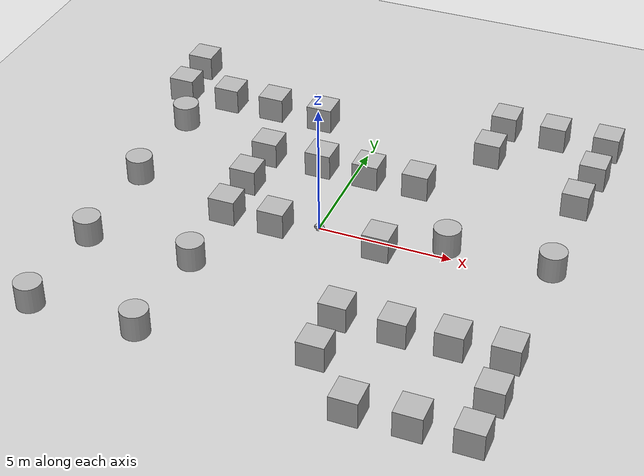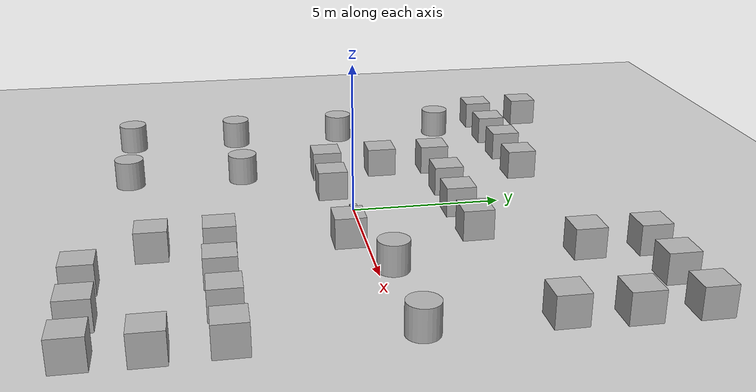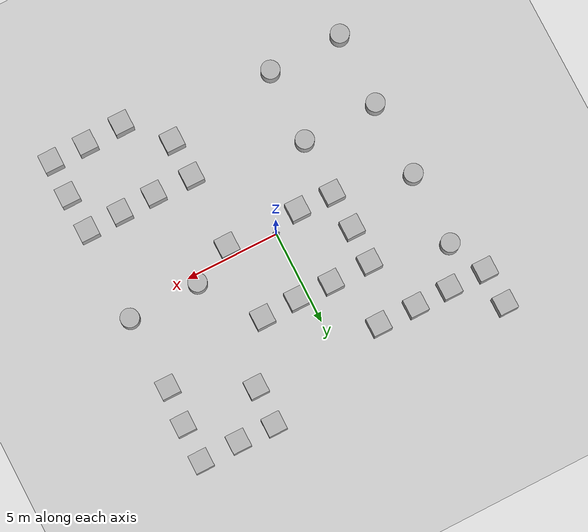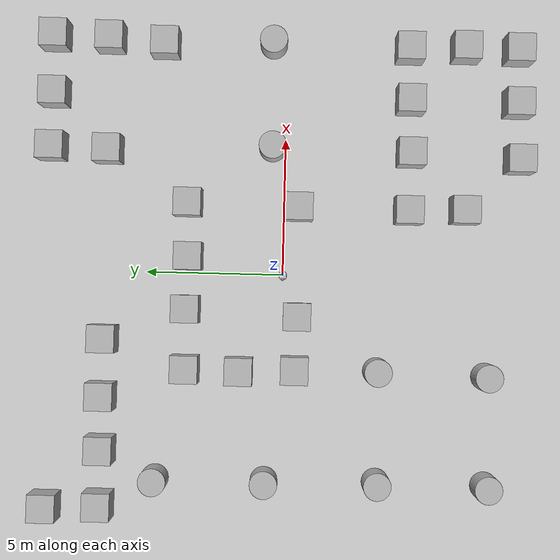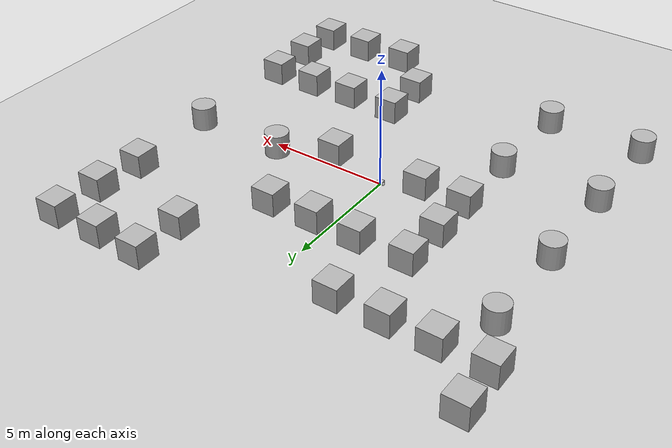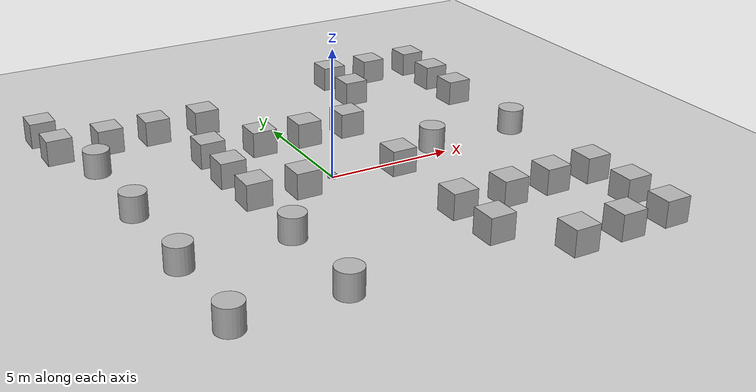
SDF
<sdf version='1.12'>
  <world name='empty'>
    <physics name='1ms' type='ignored'>
      <max_step_size>0.001</max_step_size>
      <real_time_factor>1</real_time_factor>
      <real_time_update_rate>1000</real_time_update_rate>
    </physics>
    <plugin name='gz::sim::systems::Physics' filename='gz-sim-physics-system'/>
    <plugin name='gz::sim::systems::UserCommands' filename='gz-sim-user-commands-system'/>
    <plugin name='gz::sim::systems::SceneBroadcaster' filename='gz-sim-scene-broadcaster-system'/>
    <plugin name='gz::sim::systems::Contact' filename='gz-sim-contact-system'/>
    <gravity>0 0 -9.8000000000000007</gravity>
    <magnetic_field>5.5644999999999998e-06 2.2875799999999999e-05 -4.2388400000000002e-05</magnetic_field>
    <atmosphere type='adiabatic'/>
    <scene>
      <ambient>0.400000006 0.400000006 0.400000006 1</ambient>
      <background>0.699999988 0.699999988 0.699999988 1</background>
      <shadows>true</shadows>
    </scene>
    <model name='ground_plane'>
      <static>true</static>
      <link name='link'>
        <collision name='collision'>
          <geometry>
            <plane>
              <normal>0 0 1</normal>
              <size>100 100</size>
            </plane>
          </geometry>
          <surface>
            <friction>
              <ode/>
            </friction>
            <bounce/>
            <contact/>
          </surface>
        </collision>
        <visual name='visual'>
          <geometry>
            <plane>
              <normal>0 0 1</normal>
              <size>100 100</size>
            </plane>
          </geometry>
          <material>
            <ambient>0.800000012 0.800000012 0.800000012 1</ambient>
            <diffuse>0.800000012 0.800000012 0.800000012 1</diffuse>
            <specular>0.800000012 0.800000012 0.800000012 1</specular>
          </material>
        </visual>
        <pose>0 0 0 0 0 0</pose>
        <inertial>
          <pose>0 0 0 0 0 0</pose>
          <mass>1</mass>
          <inertia>
            <ixx>1</ixx>
            <ixy>0</ixy>
            <ixz>0</ixz>
            <iyy>1</iyy>
            <iyz>0</iyz>
            <izz>1</izz>
          </inertia>
        </inertial>
        <enable_wind>false</enable_wind>
      </link>
      <pose>0 0 0 0 0 0</pose>
      <self_collide>false</self_collide>
    </model>
    <model name='box_0'>
      <pose>2.503623531650065 -0.53403224822917794 0.49999999990199806 6.2287739151293738e-22 9.3279666454713669e-22 -3.6315533669320137e-22</pose>
      <link name='box_link'>
        <inertial>
          <inertia>
            <ixx>0.16666</ixx>
            <ixy>0</ixy>
            <ixz>0</ixz>
            <iyy>0.16666</iyy>
            <iyz>0</iyz>
            <izz>0.16666</izz>
          </inertia>
          <mass>1</mass>
          <pose>0 0 0 0 0 0</pose>
        </inertial>
        <collision name='box_collision'>
          <geometry>
            <box>
              <size>1 1 1</size>
            </box>
          </geometry>
          <surface>
            <friction>
              <ode/>
            </friction>
            <bounce/>
            <contact/>
          </surface>
        </collision>
        <visual name='box_visual'>
          <geometry>
            <box>
              <size>1 1 1</size>
            </box>
          </geometry>
          <material>
            <ambient>0.300000012 0.300000012 0.300000012 1</ambient>
            <diffuse>0.699999988 0.699999988 0.699999988 1</diffuse>
            <specular>1 1 1 1</specular>
          </material>
        </visual>
        <pose>0 0 0 0 0 0</pose>
        <enable_wind>false</enable_wind>
      </link>
      <static>false</static>
      <self_collide>false</self_collide>
    </model>
    <model name='box_1'>
      <pose>-1.4900658982286914 -0.54602538299168302 0.49999999990199806 6.2287739151293738e-22 9.3279666454713669e-22 -3.6315533669320137e-22</pose>
      <link name='box_link'>
        <inertial>
          <inertia>
            <ixx>0.16666</ixx>
            <ixy>0</ixy>
            <ixz>0</ixz>
            <iyy>0.16666</iyy>
            <iyz>0</iyz>
            <izz>0.16666</izz>
          </inertia>
          <mass>1</mass>
          <pose>0 0 0 0 0 0</pose>
        </inertial>
        <collision name='box_collision'>
          <geometry>
            <box>
              <size>1 1 1</size>
            </box>
          </geometry>
          <surface>
            <friction>
              <ode/>
            </friction>
            <bounce/>
            <contact/>
          </surface>
        </collision>
        <visual name='box_visual'>
          <geometry>
            <box>
              <size>1 1 1</size>
            </box>
          </geometry>
          <material>
            <ambient>0.300000012 0.300000012 0.300000012 1</ambient>
            <diffuse>0.699999988 0.699999988 0.699999988 1</diffuse>
            <specular>1 1 1 1</specular>
          </material>
        </visual>
        <pose>0 0 0 0 0 0</pose>
        <enable_wind>false</enable_wind>
      </link>
      <static>false</static>
      <self_collide>false</self_collide>
    </model>
    <model name='box_1_1'>
      <pose>-3.4321913259403338 -0.49788729154501388 0.49999999990199806 6.2287739151293738e-22 9.3279666454713669e-22 -3.6315533669320137e-22</pose>
      <link name='box_link'>
        <inertial>
          <inertia>
            <ixx>0.16666</ixx>
            <ixy>0</ixy>
            <ixz>0</ixz>
            <iyy>0.16666</iyy>
            <iyz>0</iyz>
            <izz>0.16666</izz>
          </inertia>
          <mass>1</mass>
          <pose>0 0 0 0 0 0</pose>
        </inertial>
        <collision name='box_collision'>
          <geometry>
            <box>
              <size>1 1 1</size>
            </box>
          </geometry>
          <surface>
            <friction>
              <ode/>
            </friction>
            <bounce/>
            <contact/>
          </surface>
        </collision>
        <visual name='box_visual'>
          <geometry>
            <box>
              <size>1 1 1</size>
            </box>
          </geometry>
          <material>
            <ambient>0.300000012 0.300000012 0.300000012 1</ambient>
            <diffuse>0.699999988 0.699999988 0.699999988 1</diffuse>
            <specular>1 1 1 1</specular>
          </material>
        </visual>
        <pose>0 0 0 0 0 0</pose>
        <enable_wind>false</enable_wind>
      </link>
      <static>false</static>
      <self_collide>false</self_collide>
    </model>
    <model name='box_1_2'>
      <pose>-3.5110510468009632 1.515988647667496 0.49999999990199806 -8.9387997357110183e-22 2.0358842462432641e-22 -5.764668221621625e-23</pose>
      <link name='box_link'>
        <inertial>
          <inertia>
            <ixx>0.16666</ixx>
            <ixy>0</ixy>
            <ixz>0</ixz>
            <iyy>0.16666</iyy>
            <iyz>0</iyz>
            <izz>0.16666</izz>
          </inertia>
          <mass>1</mass>
          <pose>0 0 0 0 0 0</pose>
        </inertial>
        <collision name='box_collision'>
          <geometry>
            <box>
              <size>1 1 1</size>
            </box>
          </geometry>
          <surface>
            <friction>
              <ode/>
            </friction>
            <bounce/>
            <contact/>
          </surface>
        </collision>
        <visual name='box_visual'>
          <geometry>
            <box>
              <size>1 1 1</size>
            </box>
          </geometry>
          <material>
            <ambient>0.300000012 0.300000012 0.300000012 1</ambient>
            <diffuse>0.699999988 0.699999988 0.699999988 1</diffuse>
            <specular>1 1 1 1</specular>
          </material>
        </visual>
        <pose>0 0 0 0 0 0</pose>
        <enable_wind>false</enable_wind>
      </link>
      <static>false</static>
      <self_collide>false</self_collide>
    </model>
    <model name='box_1_3'>
      <pose>-3.4798979327555379 3.4697738362355128 0.49999999990199806 6.2287739151293738e-22 9.3279666454713669e-22 -3.6315533669320137e-22</pose>
      <link name='box_link'>
        <inertial>
          <inertia>
            <ixx>0.16666</ixx>
            <ixy>0</ixy>
            <ixz>0</ixz>
            <iyy>0.16666</iyy>
            <iyz>0</iyz>
            <izz>0.16666</izz>
          </inertia>
          <mass>1</mass>
          <pose>0 0 0 0 0 0</pose>
        </inertial>
        <collision name='box_collision'>
          <geometry>
            <box>
              <size>1 1 1</size>
            </box>
          </geometry>
          <surface>
            <friction>
              <ode/>
            </friction>
            <bounce/>
            <contact/>
          </surface>
        </collision>
        <visual name='box_visual'>
          <geometry>
            <box>
              <size>1 1 1</size>
            </box>
          </geometry>
          <material>
            <ambient>0.300000012 0.300000012 0.300000012 1</ambient>
            <diffuse>0.699999988 0.699999988 0.699999988 1</diffuse>
            <specular>1 1 1 1</specular>
          </material>
        </visual>
        <pose>0 0 0 0 0 0</pose>
        <enable_wind>false</enable_wind>
      </link>
      <static>false</static>
      <self_collide>false</self_collide>
    </model>
    <model name='box_1_4'>
      <pose>-1.3025653694116466 3.4933697077790953 0.49999999990199806 6.2287739151293738e-22 9.3279666454713669e-22 -3.6315533669320137e-22</pose>
      <link name='box_link'>
        <inertial>
          <inertia>
            <ixx>0.16666</ixx>
            <ixy>0</ixy>
            <ixz>0</ixz>
            <iyy>0.16666</iyy>
            <iyz>0</iyz>
            <izz>0.16666</izz>
          </inertia>
          <mass>1</mass>
          <pose>0 0 0 0 0 0</pose>
        </inertial>
        <collision name='box_collision'>
          <geometry>
            <box>
              <size>1 1 1</size>
            </box>
          </geometry>
          <surface>
            <friction>
              <ode/>
            </friction>
            <bounce/>
            <contact/>
          </surface>
        </collision>
        <visual name='box_visual'>
          <geometry>
            <box>
              <size>1 1 1</size>
            </box>
          </geometry>
          <material>
            <ambient>0.300000012 0.300000012 0.300000012 1</ambient>
            <diffuse>0.699999988 0.699999988 0.699999988 1</diffuse>
            <specular>1 1 1 1</specular>
          </material>
        </visual>
        <pose>0 0 0 0 0 0</pose>
        <enable_wind>false</enable_wind>
      </link>
      <static>false</static>
      <self_collide>false</self_collide>
    </model>
    <model name='box_1_5'>
      <pose>0.6158261353747011 3.4449937040749985 0.49999999990199806 -4.0737699217676438e-22 -3.0870083691057572e-21 2.019312431259651e-22</pose>
      <link name='box_link'>
        <inertial>
          <inertia>
            <ixx>0.16666</ixx>
            <ixy>0</ixy>
            <ixz>0</ixz>
            <iyy>0.16666</iyy>
            <iyz>0</iyz>
            <izz>0.16666</izz>
          </inertia>
          <mass>1</mass>
          <pose>0 0 0 0 0 0</pose>
        </inertial>
        <collision name='box_collision'>
          <geometry>
            <box>
              <size>1 1 1</size>
            </box>
          </geometry>
          <surface>
            <friction>
              <ode/>
            </friction>
            <bounce/>
            <contact/>
          </surface>
        </collision>
        <visual name='box_visual'>
          <geometry>
            <box>
              <size>1 1 1</size>
            </box>
          </geometry>
          <material>
            <ambient>0.300000012 0.300000012 0.300000012 1</ambient>
            <diffuse>0.699999988 0.699999988 0.699999988 1</diffuse>
            <specular>1 1 1 1</specular>
          </material>
        </visual>
        <pose>0 0 0 0 0 0</pose>
        <enable_wind>false</enable_wind>
      </link>
      <static>false</static>
      <self_collide>false</self_collide>
    </model>
    <model name='box_1_6'>
      <pose>2.5719891244864197 3.5066985074192232 0.49999999990199806 6.2287739151293738e-22 9.3279666454713669e-22 -3.6315533669320137e-22</pose>
      <link name='box_link'>
        <inertial>
          <inertia>
            <ixx>0.16666</ixx>
            <ixy>0</ixy>
            <ixz>0</ixz>
            <iyy>0.16666</iyy>
            <iyz>0</iyz>
            <izz>0.16666</izz>
          </inertia>
          <mass>1</mass>
          <pose>0 0 0 0 0 0</pose>
        </inertial>
        <collision name='box_collision'>
          <geometry>
            <box>
              <size>1 1 1</size>
            </box>
          </geometry>
          <surface>
            <friction>
              <ode/>
            </friction>
            <bounce/>
            <contact/>
          </surface>
        </collision>
        <visual name='box_visual'>
          <geometry>
            <box>
              <size>1 1 1</size>
            </box>
          </geometry>
          <material>
            <ambient>0.300000012 0.300000012 0.300000012 1</ambient>
            <diffuse>0.699999988 0.699999988 0.699999988 1</diffuse>
            <specular>1 1 1 1</specular>
          </material>
        </visual>
        <pose>0 0 0 0 0 0</pose>
        <enable_wind>false</enable_wind>
      </link>
      <static>false</static>
      <self_collide>false</self_collide>
    </model>
    <model name='box_1_7'>
      <pose>8.4421075652482678 -8.4142646879856287 0.49999999990199806 6.2287739151293738e-22 9.3279666454713669e-22 -3.6315533669320137e-22</pose>
      <link name='box_link'>
        <inertial>
          <inertia>
            <ixx>0.16666</ixx>
            <ixy>0</ixy>
            <ixz>0</ixz>
            <iyy>0.16666</iyy>
            <iyz>0</iyz>
            <izz>0.16666</izz>
          </inertia>
          <mass>1</mass>
          <pose>0 0 0 0 0 0</pose>
        </inertial>
        <collision name='box_collision'>
          <geometry>
            <box>
              <size>1 1 1</size>
            </box>
          </geometry>
          <surface>
            <friction>
              <ode/>
            </friction>
            <bounce/>
            <contact/>
          </surface>
        </collision>
        <visual name='box_visual'>
          <geometry>
            <box>
              <size>1 1 1</size>
            </box>
          </geometry>
          <material>
            <ambient>0.300000012 0.300000012 0.300000012 1</ambient>
            <diffuse>0.699999988 0.699999988 0.699999988 1</diffuse>
            <specular>1 1 1 1</specular>
          </material>
        </visual>
        <pose>0 0 0 0 0 0</pose>
        <enable_wind>false</enable_wind>
      </link>
      <static>false</static>
      <self_collide>false</self_collide>
    </model>
    <model name='box_1_8'>
      <pose>6.4898701546308546 -8.4375731814321924 0.49999999990199806 6.2287739151293738e-22 9.3279666454713669e-22 -3.6315533669320137e-22</pose>
      <link name='box_link'>
        <inertial>
          <inertia>
            <ixx>0.16666</ixx>
            <ixy>0</ixy>
            <ixz>0</ixz>
            <iyy>0.16666</iyy>
            <iyz>0</iyz>
            <izz>0.16666</izz>
          </inertia>
          <mass>1</mass>
          <pose>0 0 0 0 0 0</pose>
        </inertial>
        <collision name='box_collision'>
          <geometry>
            <box>
              <size>1 1 1</size>
            </box>
          </geometry>
          <surface>
            <friction>
              <ode/>
            </friction>
            <bounce/>
            <contact/>
          </surface>
        </collision>
        <visual name='box_visual'>
          <geometry>
            <box>
              <size>1 1 1</size>
            </box>
          </geometry>
          <material>
            <ambient>0.300000012 0.300000012 0.300000012 1</ambient>
            <diffuse>0.699999988 0.699999988 0.699999988 1</diffuse>
            <specular>1 1 1 1</specular>
          </material>
        </visual>
        <pose>0 0 0 0 0 0</pose>
        <enable_wind>false</enable_wind>
      </link>
      <static>false</static>
      <self_collide>false</self_collide>
    </model>
    <model name='box_1_9'>
      <pose>8.4775245881942762 -6.4913790985202677 0.49999999990199806 6.2287739151293738e-22 9.3279666454713669e-22 -3.6315533669320137e-22</pose>
      <link name='box_link'>
        <inertial>
          <inertia>
            <ixx>0.16666</ixx>
            <ixy>0</ixy>
            <ixz>0</ixz>
            <iyy>0.16666</iyy>
            <iyz>0</iyz>
            <izz>0.16666</izz>
          </inertia>
          <mass>1</mass>
          <pose>0 0 0 0 0 0</pose>
        </inertial>
        <collision name='box_collision'>
          <geometry>
            <box>
              <size>1 1 1</size>
            </box>
          </geometry>
          <surface>
            <friction>
              <ode/>
            </friction>
            <bounce/>
            <contact/>
          </surface>
        </collision>
        <visual name='box_visual'>
          <geometry>
            <box>
              <size>1 1 1</size>
            </box>
          </geometry>
          <material>
            <ambient>0.300000012 0.300000012 0.300000012 1</ambient>
            <diffuse>0.699999988 0.699999988 0.699999988 1</diffuse>
            <specular>1 1 1 1</specular>
          </material>
        </visual>
        <pose>0 0 0 0 0 0</pose>
        <enable_wind>false</enable_wind>
      </link>
      <static>false</static>
      <self_collide>false</self_collide>
    </model>
    <model name='box_1_10'>
      <pose>8.4062631200933708 -4.4471766204643357 0.49999999990199806 6.2287739151293738e-22 9.3279666454713669e-22 -3.6315533669320137e-22</pose>
      <link name='box_link'>
        <inertial>
          <inertia>
            <ixx>0.16666</ixx>
            <ixy>0</ixy>
            <ixz>0</ixz>
            <iyy>0.16666</iyy>
            <iyz>0</iyz>
            <izz>0.16666</izz>
          </inertia>
          <mass>1</mass>
          <pose>0 0 0 0 0 0</pose>
        </inertial>
        <collision name='box_collision'>
          <geometry>
            <box>
              <size>1 1 1</size>
            </box>
          </geometry>
          <surface>
            <friction>
              <ode/>
            </friction>
            <bounce/>
            <contact/>
          </surface>
        </collision>
        <visual name='box_visual'>
          <geometry>
            <box>
              <size>1 1 1</size>
            </box>
          </geometry>
          <material>
            <ambient>0.300000012 0.300000012 0.300000012 1</ambient>
            <diffuse>0.699999988 0.699999988 0.699999988 1</diffuse>
            <specular>1 1 1 1</specular>
          </material>
        </visual>
        <pose>0 0 0 0 0 0</pose>
        <enable_wind>false</enable_wind>
      </link>
      <static>false</static>
      <self_collide>false</self_collide>
    </model>
    <model name='box_1_11'>
      <pose>6.5123957052026915 -4.507337402706165 0.49999999990199806 6.2287739151293738e-22 9.3279666454713669e-22 -3.6315533669320137e-22</pose>
      <link name='box_link'>
        <inertial>
          <inertia>
            <ixx>0.16666</ixx>
            <ixy>0</ixy>
            <ixz>0</ixz>
            <iyy>0.16666</iyy>
            <iyz>0</iyz>
            <izz>0.16666</izz>
          </inertia>
          <mass>1</mass>
          <pose>0 0 0 0 0 0</pose>
        </inertial>
        <collision name='box_collision'>
          <geometry>
            <box>
              <size>1 1 1</size>
            </box>
          </geometry>
          <surface>
            <friction>
              <ode/>
            </friction>
            <bounce/>
            <contact/>
          </surface>
        </collision>
        <visual name='box_visual'>
          <geometry>
            <box>
              <size>1 1 1</size>
            </box>
          </geometry>
          <material>
            <ambient>0.300000012 0.300000012 0.300000012 1</ambient>
            <diffuse>0.699999988 0.699999988 0.699999988 1</diffuse>
            <specular>1 1 1 1</specular>
          </material>
        </visual>
        <pose>0 0 0 0 0 0</pose>
        <enable_wind>false</enable_wind>
      </link>
      <static>false</static>
      <self_collide>false</self_collide>
    </model>
    <model name='box_1_12'>
      <pose>4.5832504717364806 -4.5685122910527829 0.49999999990199806 6.2287739151293738e-22 9.3279666454713669e-22 -3.6315533669320137e-22</pose>
      <link name='box_link'>
        <inertial>
          <inertia>
            <ixx>0.16666</ixx>
            <ixy>0</ixy>
            <ixz>0</ixz>
            <iyy>0.16666</iyy>
            <iyz>0</iyz>
            <izz>0.16666</izz>
          </inertia>
          <mass>1</mass>
          <pose>0 0 0 0 0 0</pose>
        </inertial>
        <collision name='box_collision'>
          <geometry>
            <box>
              <size>1 1 1</size>
            </box>
          </geometry>
          <surface>
            <friction>
              <ode/>
            </friction>
            <bounce/>
            <contact/>
          </surface>
        </collision>
        <visual name='box_visual'>
          <geometry>
            <box>
              <size>1 1 1</size>
            </box>
          </geometry>
          <material>
            <ambient>0.300000012 0.300000012 0.300000012 1</ambient>
            <diffuse>0.699999988 0.699999988 0.699999988 1</diffuse>
            <specular>1 1 1 1</specular>
          </material>
        </visual>
        <pose>0 0 0 0 0 0</pose>
        <enable_wind>false</enable_wind>
      </link>
      <static>false</static>
      <self_collide>false</self_collide>
    </model>
    <model name='box_1_13'>
      <pose>2.4728567501726895 -4.5199002084521949 0.49999999990199806 6.2287739151293738e-22 9.3279666454713669e-22 -3.6315533669320137e-22</pose>
      <link name='box_link'>
        <inertial>
          <inertia>
            <ixx>0.16666</ixx>
            <ixy>0</ixy>
            <ixz>0</ixz>
            <iyy>0.16666</iyy>
            <iyz>0</iyz>
            <izz>0.16666</izz>
          </inertia>
          <mass>1</mass>
          <pose>0 0 0 0 0 0</pose>
        </inertial>
        <collision name='box_collision'>
          <geometry>
            <box>
              <size>1 1 1</size>
            </box>
          </geometry>
          <surface>
            <friction>
              <ode/>
            </friction>
            <bounce/>
            <contact/>
          </surface>
        </collision>
        <visual name='box_visual'>
          <geometry>
            <box>
              <size>1 1 1</size>
            </box>
          </geometry>
          <material>
            <ambient>0.300000012 0.300000012 0.300000012 1</ambient>
            <diffuse>0.699999988 0.699999988 0.699999988 1</diffuse>
            <specular>1 1 1 1</specular>
          </material>
        </visual>
        <pose>0 0 0 0 0 0</pose>
        <enable_wind>false</enable_wind>
      </link>
      <static>false</static>
      <self_collide>false</self_collide>
    </model>
    <model name='box_1_14'>
      <pose>2.5295811864806743 -6.563308527208509 0.49999999990199806 6.2287739151293738e-22 9.3279666454713669e-22 -3.6315533669320137e-22</pose>
      <link name='box_link'>
        <inertial>
          <inertia>
            <ixx>0.16666</ixx>
            <ixy>0</ixy>
            <ixz>0</ixz>
            <iyy>0.16666</iyy>
            <iyz>0</iyz>
            <izz>0.16666</izz>
          </inertia>
          <mass>1</mass>
          <pose>0 0 0 0 0 0</pose>
        </inertial>
        <collision name='box_collision'>
          <geometry>
            <box>
              <size>1 1 1</size>
            </box>
          </geometry>
          <surface>
            <friction>
              <ode/>
            </friction>
            <bounce/>
            <contact/>
          </surface>
        </collision>
        <visual name='box_visual'>
          <geometry>
            <box>
              <size>1 1 1</size>
            </box>
          </geometry>
          <material>
            <ambient>0.300000012 0.300000012 0.300000012 1</ambient>
            <diffuse>0.699999988 0.699999988 0.699999988 1</diffuse>
            <specular>1 1 1 1</specular>
          </material>
        </visual>
        <pose>0 0 0 0 0 0</pose>
        <enable_wind>false</enable_wind>
      </link>
      <static>false</static>
      <self_collide>false</self_collide>
    </model>
    <model name='box_1_15'>
      <pose>4.4289535820059811 -8.5315301827347465 0.49999999990199806 6.2287739151293738e-22 9.3279666454713669e-22 -3.6315533669320137e-22</pose>
      <link name='box_link'>
        <inertial>
          <inertia>
            <ixx>0.16666</ixx>
            <ixy>0</ixy>
            <ixz>0</ixz>
            <iyy>0.16666</iyy>
            <iyz>0</iyz>
            <izz>0.16666</izz>
          </inertia>
          <mass>1</mass>
          <pose>0 0 0 0 0 0</pose>
        </inertial>
        <collision name='box_collision'>
          <geometry>
            <box>
              <size>1 1 1</size>
            </box>
          </geometry>
          <surface>
            <friction>
              <ode/>
            </friction>
            <bounce/>
            <contact/>
          </surface>
        </collision>
        <visual name='box_visual'>
          <geometry>
            <box>
              <size>1 1 1</size>
            </box>
          </geometry>
          <material>
            <ambient>0.300000012 0.300000012 0.300000012 1</ambient>
            <diffuse>0.699999988 0.699999988 0.699999988 1</diffuse>
            <specular>1 1 1 1</specular>
          </material>
        </visual>
        <pose>0 0 0 0 0 0</pose>
        <enable_wind>false</enable_wind>
      </link>
      <static>false</static>
      <self_collide>false</self_collide>
    </model>
    <model name='box_1_16'>
      <pose>-6.4543298537715392 6.4618063745167431 0.49999999990199806 6.2287739151293738e-22 9.3279666454713669e-22 -3.6315533669320137e-22</pose>
      <link name='box_link'>
        <inertial>
          <inertia>
            <ixx>0.16666</ixx>
            <ixy>0</ixy>
            <ixz>0</ixz>
            <iyy>0.16666</iyy>
            <iyz>0</iyz>
            <izz>0.16666</izz>
          </inertia>
          <mass>1</mass>
          <pose>0 0 0 0 0 0</pose>
        </inertial>
        <collision name='box_collision'>
          <geometry>
            <box>
              <size>1 1 1</size>
            </box>
          </geometry>
          <surface>
            <friction>
              <ode/>
            </friction>
            <bounce/>
            <contact/>
          </surface>
        </collision>
        <visual name='box_visual'>
          <geometry>
            <box>
              <size>1 1 1</size>
            </box>
          </geometry>
          <material>
            <ambient>0.300000012 0.300000012 0.300000012 1</ambient>
            <diffuse>0.699999988 0.699999988 0.699999988 1</diffuse>
            <specular>1 1 1 1</specular>
          </material>
        </visual>
        <pose>0 0 0 0 0 0</pose>
        <enable_wind>false</enable_wind>
      </link>
      <static>false</static>
      <self_collide>false</self_collide>
    </model>
    <model name='box_1_17'>
      <pose>-8.4564350831453936 6.4741723821877857 0.49999999990199806 6.2287739151293738e-22 9.3279666454713669e-22 -3.6315533669320137e-22</pose>
      <link name='box_link'>
        <inertial>
          <inertia>
            <ixx>0.16666</ixx>
            <ixy>0</ixy>
            <ixz>0</ixz>
            <iyy>0.16666</iyy>
            <iyz>0</iyz>
            <izz>0.16666</izz>
          </inertia>
          <mass>1</mass>
          <pose>0 0 0 0 0 0</pose>
        </inertial>
        <collision name='box_collision'>
          <geometry>
            <box>
              <size>1 1 1</size>
            </box>
          </geometry>
          <surface>
            <friction>
              <ode/>
            </friction>
            <bounce/>
            <contact/>
          </surface>
        </collision>
        <visual name='box_visual'>
          <geometry>
            <box>
              <size>1 1 1</size>
            </box>
          </geometry>
          <material>
            <ambient>0.300000012 0.300000012 0.300000012 1</ambient>
            <diffuse>0.699999988 0.699999988 0.699999988 1</diffuse>
            <specular>1 1 1 1</specular>
          </material>
        </visual>
        <pose>0 0 0 0 0 0</pose>
        <enable_wind>false</enable_wind>
      </link>
      <static>false</static>
      <self_collide>false</self_collide>
    </model>
    <model name='box_1_18'>
      <pose>-8.5521222252819964 8.4236275462564336 0.49999999990199806 6.2287739151293738e-22 9.3279666454713669e-22 -3.6315533669320137e-22</pose>
      <link name='box_link'>
        <inertial>
          <inertia>
            <ixx>0.16666</ixx>
            <ixy>0</ixy>
            <ixz>0</ixz>
            <iyy>0.16666</iyy>
            <iyz>0</iyz>
            <izz>0.16666</izz>
          </inertia>
          <mass>1</mass>
          <pose>0 0 0 0 0 0</pose>
        </inertial>
        <collision name='box_collision'>
          <geometry>
            <box>
              <size>1 1 1</size>
            </box>
          </geometry>
          <surface>
            <friction>
              <ode/>
            </friction>
            <bounce/>
            <contact/>
          </surface>
        </collision>
        <visual name='box_visual'>
          <geometry>
            <box>
              <size>1 1 1</size>
            </box>
          </geometry>
          <material>
            <ambient>0.300000012 0.300000012 0.300000012 1</ambient>
            <diffuse>0.699999988 0.699999988 0.699999988 1</diffuse>
            <specular>1 1 1 1</specular>
          </material>
        </visual>
        <pose>0 0 0 0 0 0</pose>
        <enable_wind>false</enable_wind>
      </link>
      <static>false</static>
      <self_collide>false</self_collide>
    </model>
    <model name='box_1_19'>
      <pose>-4.5259752952845904 6.4878449526403159 0.49999999990199806 6.2287739151293738e-22 9.3279666454713669e-22 -3.6315533669320137e-22</pose>
      <link name='box_link'>
        <inertial>
          <inertia>
            <ixx>0.16666</ixx>
            <ixy>0</ixy>
            <ixz>0</ixz>
            <iyy>0.16666</iyy>
            <iyz>0</iyz>
            <izz>0.16666</izz>
          </inertia>
          <mass>1</mass>
          <pose>0 0 0 0 0 0</pose>
        </inertial>
        <collision name='box_collision'>
          <geometry>
            <box>
              <size>1 1 1</size>
            </box>
          </geometry>
          <surface>
            <friction>
              <ode/>
            </friction>
            <bounce/>
            <contact/>
          </surface>
        </collision>
        <visual name='box_visual'>
          <geometry>
            <box>
              <size>1 1 1</size>
            </box>
          </geometry>
          <material>
            <ambient>0.300000012 0.300000012 0.300000012 1</ambient>
            <diffuse>0.699999988 0.699999988 0.699999988 1</diffuse>
            <specular>1 1 1 1</specular>
          </material>
        </visual>
        <pose>0 0 0 0 0 0</pose>
        <enable_wind>false</enable_wind>
      </link>
      <static>false</static>
      <self_collide>false</self_collide>
    </model>
    <model name='box_1_20'>
      <pose>-2.4489593069959898 6.4749623607507081 0.49999999990199806 6.2287739151293738e-22 9.3279666454713669e-22 -3.6315533669320137e-22</pose>
      <link name='box_link'>
        <inertial>
          <inertia>
            <ixx>0.16666</ixx>
            <ixy>0</ixy>
            <ixz>0</ixz>
            <iyy>0.16666</iyy>
            <iyz>0</iyz>
            <izz>0.16666</izz>
          </inertia>
          <mass>1</mass>
          <pose>0 0 0 0 0 0</pose>
        </inertial>
        <collision name='box_collision'>
          <geometry>
            <box>
              <size>1 1 1</size>
            </box>
          </geometry>
          <surface>
            <friction>
              <ode/>
            </friction>
            <bounce/>
            <contact/>
          </surface>
        </collision>
        <visual name='box_visual'>
          <geometry>
            <box>
              <size>1 1 1</size>
            </box>
          </geometry>
          <material>
            <ambient>0.300000012 0.300000012 0.300000012 1</ambient>
            <diffuse>0.699999988 0.699999988 0.699999988 1</diffuse>
            <specular>1 1 1 1</specular>
          </material>
        </visual>
        <pose>0 0 0 0 0 0</pose>
        <enable_wind>false</enable_wind>
      </link>
      <static>false</static>
      <self_collide>false</self_collide>
    </model>
    <model name='box_1_21'>
      <pose>8.5667366041728457 8.5085690830310963 0.49999999990199806 6.2287739151293738e-22 9.3279666454713669e-22 -3.6315533669320137e-22</pose>
      <link name='box_link'>
        <inertial>
          <inertia>
            <ixx>0.16666</ixx>
            <ixy>0</ixy>
            <ixz>0</ixz>
            <iyy>0.16666</iyy>
            <iyz>0</iyz>
            <izz>0.16666</izz>
          </inertia>
          <mass>1</mass>
          <pose>0 0 0 0 0 0</pose>
        </inertial>
        <collision name='box_collision'>
          <geometry>
            <box>
              <size>1 1 1</size>
            </box>
          </geometry>
          <surface>
            <friction>
              <ode/>
            </friction>
            <bounce/>
            <contact/>
          </surface>
        </collision>
        <visual name='box_visual'>
          <geometry>
            <box>
              <size>1 1 1</size>
            </box>
          </geometry>
          <material>
            <ambient>0.300000012 0.300000012 0.300000012 1</ambient>
            <diffuse>0.699999988 0.699999988 0.699999988 1</diffuse>
            <specular>1 1 1 1</specular>
          </material>
        </visual>
        <pose>0 0 0 0 0 0</pose>
        <enable_wind>false</enable_wind>
      </link>
      <static>false</static>
      <self_collide>false</self_collide>
    </model>
    <model name='box_1_22'>
      <pose>6.4810127031188953 8.4826358949154361 0.49999999990199806 6.2287739151293738e-22 9.3279666454713669e-22 -3.6315533669320137e-22</pose>
      <link name='box_link'>
        <inertial>
          <inertia>
            <ixx>0.16666</ixx>
            <ixy>0</ixy>
            <ixz>0</ixz>
            <iyy>0.16666</iyy>
            <iyz>0</iyz>
            <izz>0.16666</izz>
          </inertia>
          <mass>1</mass>
          <pose>0 0 0 0 0 0</pose>
        </inertial>
        <collision name='box_collision'>
          <geometry>
            <box>
              <size>1 1 1</size>
            </box>
          </geometry>
          <surface>
            <friction>
              <ode/>
            </friction>
            <bounce/>
            <contact/>
          </surface>
        </collision>
        <visual name='box_visual'>
          <geometry>
            <box>
              <size>1 1 1</size>
            </box>
          </geometry>
          <material>
            <ambient>0.300000012 0.300000012 0.300000012 1</ambient>
            <diffuse>0.699999988 0.699999988 0.699999988 1</diffuse>
            <specular>1 1 1 1</specular>
          </material>
        </visual>
        <pose>0 0 0 0 0 0</pose>
        <enable_wind>false</enable_wind>
      </link>
      <static>false</static>
      <self_collide>false</self_collide>
    </model>
    <model name='box_1_23'>
      <pose>4.5097548821210989 8.5330469070127783 0.49999999990199806 6.2287739151293738e-22 9.3279666454713669e-22 -3.6315533669320137e-22</pose>
      <link name='box_link'>
        <inertial>
          <inertia>
            <ixx>0.16666</ixx>
            <ixy>0</ixy>
            <ixz>0</ixz>
            <iyy>0.16666</iyy>
            <iyz>0</iyz>
            <izz>0.16666</izz>
          </inertia>
          <mass>1</mass>
          <pose>0 0 0 0 0 0</pose>
        </inertial>
        <collision name='box_collision'>
          <geometry>
            <box>
              <size>1 1 1</size>
            </box>
          </geometry>
          <surface>
            <friction>
              <ode/>
            </friction>
            <bounce/>
            <contact/>
          </surface>
        </collision>
        <visual name='box_visual'>
          <geometry>
            <box>
              <size>1 1 1</size>
            </box>
          </geometry>
          <material>
            <ambient>0.300000012 0.300000012 0.300000012 1</ambient>
            <diffuse>0.699999988 0.699999988 0.699999988 1</diffuse>
            <specular>1 1 1 1</specular>
          </material>
        </visual>
        <pose>0 0 0 0 0 0</pose>
        <enable_wind>false</enable_wind>
      </link>
      <static>false</static>
      <self_collide>false</self_collide>
    </model>
    <model name='box_1_24'>
      <pose>8.5295788731759359 6.4826925113874516 0.49999999990199806 6.2287739151293738e-22 9.3279666454713669e-22 -3.6315533669320137e-22</pose>
      <link name='box_link'>
        <inertial>
          <inertia>
            <ixx>0.16666</ixx>
            <ixy>0</ixy>
            <ixz>0</ixz>
            <iyy>0.16666</iyy>
            <iyz>0</iyz>
            <izz>0.16666</izz>
          </inertia>
          <mass>1</mass>
          <pose>0 0 0 0 0 0</pose>
        </inertial>
        <collision name='box_collision'>
          <geometry>
            <box>
              <size>1 1 1</size>
            </box>
          </geometry>
          <surface>
            <friction>
              <ode/>
            </friction>
            <bounce/>
            <contact/>
          </surface>
        </collision>
        <visual name='box_visual'>
          <geometry>
            <box>
              <size>1 1 1</size>
            </box>
          </geometry>
          <material>
            <ambient>0.300000012 0.300000012 0.300000012 1</ambient>
            <diffuse>0.699999988 0.699999988 0.699999988 1</diffuse>
            <specular>1 1 1 1</specular>
          </material>
        </visual>
        <pose>0 0 0 0 0 0</pose>
        <enable_wind>false</enable_wind>
      </link>
      <static>false</static>
      <self_collide>false</self_collide>
    </model>
    <model name='box_1_25'>
      <pose>4.4496854583980614 6.4707707557487844 0.49999999990199806 6.2287739151293738e-22 9.3279666454713669e-22 -3.6315533669320137e-22</pose>
      <link name='box_link'>
        <inertial>
          <inertia>
            <ixx>0.16666</ixx>
            <ixy>0</ixy>
            <ixz>0</ixz>
            <iyy>0.16666</iyy>
            <iyz>0</iyz>
            <izz>0.16666</izz>
          </inertia>
          <mass>1</mass>
          <pose>0 0 0 0 0 0</pose>
        </inertial>
        <collision name='box_collision'>
          <geometry>
            <box>
              <size>1 1 1</size>
            </box>
          </geometry>
          <surface>
            <friction>
              <ode/>
            </friction>
            <bounce/>
            <contact/>
          </surface>
        </collision>
        <visual name='box_visual'>
          <geometry>
            <box>
              <size>1 1 1</size>
            </box>
          </geometry>
          <material>
            <ambient>0.300000012 0.300000012 0.300000012 1</ambient>
            <diffuse>0.699999988 0.699999988 0.699999988 1</diffuse>
            <specular>1 1 1 1</specular>
          </material>
        </visual>
        <pose>0 0 0 0 0 0</pose>
        <enable_wind>false</enable_wind>
      </link>
      <static>false</static>
      <self_collide>false</self_collide>
    </model>
    <model name='box_1_26'>
      <pose>8.3825991162587634 4.4721102356067082 0.49999999990199806 6.2287739151293738e-22 9.3279666454713669e-22 -3.6315533669320137e-22</pose>
      <link name='box_link'>
        <inertial>
          <inertia>
            <ixx>0.16666</ixx>
            <ixy>0</ixy>
            <ixz>0</ixz>
            <iyy>0.16666</iyy>
            <iyz>0</iyz>
            <izz>0.16666</izz>
          </inertia>
          <mass>1</mass>
          <pose>0 0 0 0 0 0</pose>
        </inertial>
        <collision name='box_collision'>
          <geometry>
            <box>
              <size>1 1 1</size>
            </box>
          </geometry>
          <surface>
            <friction>
              <ode/>
            </friction>
            <bounce/>
            <contact/>
          </surface>
        </collision>
        <visual name='box_visual'>
          <geometry>
            <box>
              <size>1 1 1</size>
            </box>
          </geometry>
          <material>
            <ambient>0.300000012 0.300000012 0.300000012 1</ambient>
            <diffuse>0.699999988 0.699999988 0.699999988 1</diffuse>
            <specular>1 1 1 1</specular>
          </material>
        </visual>
        <pose>0 0 0 0 0 0</pose>
        <enable_wind>false</enable_wind>
      </link>
      <static>false</static>
      <self_collide>false</self_collide>
    </model>
    <model name='cylinder'>
      <pose>-7.5034886828662142 -7.5356395863249155 0.49999942638036005 1.3003385462673683e-19 5.0221363440529492e-20 3.5897683165485237e-20</pose>
      <link name='cylinder_link'>
        <inertial>
          <inertia>
            <ixx>0.14580000000000001</ixx>
            <ixy>0</ixy>
            <ixz>0</ixz>
            <iyy>0.14580000000000001</iyy>
            <iyz>0</iyz>
            <izz>0.125</izz>
          </inertia>
          <mass>1</mass>
          <pose>0 0 0 0 0 0</pose>
        </inertial>
        <collision name='cylinder_collision'>
          <geometry>
            <cylinder>
              <radius>0.5</radius>
              <length>1</length>
            </cylinder>
          </geometry>
          <surface>
            <friction>
              <ode/>
            </friction>
            <bounce/>
            <contact/>
          </surface>
        </collision>
        <visual name='cylinder_visual'>
          <geometry>
            <cylinder>
              <radius>0.5</radius>
              <length>1</length>
            </cylinder>
          </geometry>
          <material>
            <ambient>0.300000012 0.300000012 0.300000012 1</ambient>
            <diffuse>0.699999988 0.699999988 0.699999988 1</diffuse>
            <specular>1 1 1 1</specular>
          </material>
        </visual>
        <pose>0 0 0 0 0 0</pose>
        <enable_wind>false</enable_wind>
      </link>
      <static>false</static>
      <self_collide>false</self_collide>
    </model>
    <model name='cylinder_1'>
      <pose>-3.5229897950858122 -7.4892807905877419 0.49999942638036005 -9.4142563092837556e-20 4.3433581782627262e-19 3.1561358514679255e-21</pose>
      <link name='cylinder_link'>
        <inertial>
          <inertia>
            <ixx>0.14580000000000001</ixx>
            <ixy>0</ixy>
            <ixz>0</ixz>
            <iyy>0.14580000000000001</iyy>
            <iyz>0</iyz>
            <izz>0.125</izz>
          </inertia>
          <mass>1</mass>
          <pose>0 0 0 0 0 0</pose>
        </inertial>
        <collision name='cylinder_collision'>
          <geometry>
            <cylinder>
              <radius>0.5</radius>
              <length>1</length>
            </cylinder>
          </geometry>
          <surface>
            <friction>
              <ode/>
            </friction>
            <bounce/>
            <contact/>
          </surface>
        </collision>
        <visual name='cylinder_visual'>
          <geometry>
            <cylinder>
              <radius>0.5</radius>
              <length>1</length>
            </cylinder>
          </geometry>
          <material>
            <ambient>0.300000012 0.300000012 0.300000012 1</ambient>
            <diffuse>0.699999988 0.699999988 0.699999988 1</diffuse>
            <specular>1 1 1 1</specular>
          </material>
        </visual>
        <pose>0 0 0 0 0 0</pose>
        <enable_wind>false</enable_wind>
      </link>
      <static>false</static>
      <self_collide>false</self_collide>
    </model>
    <model name='cylinder_2'>
      <pose>-7.4695162407103108 -3.5577180057968505 0.49999942638036005 1.6443435618698702e-19 1.8083429672608237e-19 -2.1765617205006834e-20</pose>
      <link name='cylinder_link'>
        <inertial>
          <inertia>
            <ixx>0.14580000000000001</ixx>
            <ixy>0</ixy>
            <ixz>0</ixz>
            <iyy>0.14580000000000001</iyy>
            <iyz>0</iyz>
            <izz>0.125</izz>
          </inertia>
          <mass>1</mass>
          <pose>0 0 0 0 0 0</pose>
        </inertial>
        <collision name='cylinder_collision'>
          <geometry>
            <cylinder>
              <radius>0.5</radius>
              <length>1</length>
            </cylinder>
          </geometry>
          <surface>
            <friction>
              <ode/>
            </friction>
            <bounce/>
            <contact/>
          </surface>
        </collision>
        <visual name='cylinder_visual'>
          <geometry>
            <cylinder>
              <radius>0.5</radius>
              <length>1</length>
            </cylinder>
          </geometry>
          <material>
            <ambient>0.300000012 0.300000012 0.300000012 1</ambient>
            <diffuse>0.699999988 0.699999988 0.699999988 1</diffuse>
            <specular>1 1 1 1</specular>
          </material>
        </visual>
        <pose>0 0 0 0 0 0</pose>
        <enable_wind>false</enable_wind>
      </link>
      <static>false</static>
      <self_collide>false</self_collide>
    </model>
    <model name='cylinder_3'>
      <pose>-3.4250254531150892 -3.5106203968207144 0.49999942638036005 6.4008389221800053e-20 -4.6949551819243939e-20 9.5764126821128648e-21</pose>
      <link name='cylinder_link'>
        <inertial>
          <inertia>
            <ixx>0.14580000000000001</ixx>
            <ixy>0</ixy>
            <ixz>0</ixz>
            <iyy>0.14580000000000001</iyy>
            <iyz>0</iyz>
            <izz>0.125</izz>
          </inertia>
          <mass>1</mass>
          <pose>0 0 0 0 0 0</pose>
        </inertial>
        <collision name='cylinder_collision'>
          <geometry>
            <cylinder>
              <radius>0.5</radius>
              <length>1</length>
            </cylinder>
          </geometry>
          <surface>
            <friction>
              <ode/>
            </friction>
            <bounce/>
            <contact/>
          </surface>
        </collision>
        <visual name='cylinder_visual'>
          <geometry>
            <cylinder>
              <radius>0.5</radius>
              <length>1</length>
            </cylinder>
          </geometry>
          <material>
            <ambient>0.300000012 0.300000012 0.300000012 1</ambient>
            <diffuse>0.699999988 0.699999988 0.699999988 1</diffuse>
            <specular>1 1 1 1</specular>
          </material>
        </visual>
        <pose>0 0 0 0 0 0</pose>
        <enable_wind>false</enable_wind>
      </link>
      <static>false</static>
      <self_collide>false</self_collide>
    </model>
    <model name='cylinder_4'>
      <pose>4.677313563309097 0.47627540697496595 0.49999942638036005 3.5919677645027512e-19 2.0691735794553807e-19 -3.643484637753837e-21</pose>
      <link name='cylinder_link'>
        <inertial>
          <inertia>
            <ixx>0.14580000000000001</ixx>
            <ixy>0</ixy>
            <ixz>0</ixz>
            <iyy>0.14580000000000001</iyy>
            <iyz>0</iyz>
            <izz>0.125</izz>
          </inertia>
          <mass>1</mass>
          <pose>0 0 0 0 0 0</pose>
        </inertial>
        <collision name='cylinder_collision'>
          <geometry>
            <cylinder>
              <radius>0.5</radius>
              <length>1</length>
            </cylinder>
          </geometry>
          <surface>
            <friction>
              <ode/>
            </friction>
            <bounce/>
            <contact/>
          </surface>
        </collision>
        <visual name='cylinder_visual'>
          <geometry>
            <cylinder>
              <radius>0.5</radius>
              <length>1</length>
            </cylinder>
          </geometry>
          <material>
            <ambient>0.300000012 0.300000012 0.300000012 1</ambient>
            <diffuse>0.699999988 0.699999988 0.699999988 1</diffuse>
            <specular>1 1 1 1</specular>
          </material>
        </visual>
        <pose>0 0 0 0 0 0</pose>
        <enable_wind>false</enable_wind>
      </link>
      <static>false</static>
      <self_collide>false</self_collide>
    </model>
    <model name='cylinder_5'>
      <pose>8.4962470029617769 0.52613249927219918 0.49999942638036005 7.3930291628335472e-20 2.1677679945487307e-19 -6.2216467159877713e-21</pose>
      <link name='cylinder_link'>
        <inertial>
          <inertia>
            <ixx>0.14580000000000001</ixx>
            <ixy>0</ixy>
            <ixz>0</ixz>
            <iyy>0.14580000000000001</iyy>
            <iyz>0</iyz>
            <izz>0.125</izz>
          </inertia>
          <mass>1</mass>
          <pose>0 0 0 0 0 0</pose>
        </inertial>
        <collision name='cylinder_collision'>
          <geometry>
            <cylinder>
              <radius>0.5</radius>
              <length>1</length>
            </cylinder>
          </geometry>
          <surface>
            <friction>
              <ode/>
            </friction>
            <bounce/>
            <contact/>
          </surface>
        </collision>
        <visual name='cylinder_visual'>
          <geometry>
            <cylinder>
              <radius>0.5</radius>
              <length>1</length>
            </cylinder>
          </geometry>
          <material>
            <ambient>0.300000012 0.300000012 0.300000012 1</ambient>
            <diffuse>0.699999988 0.699999988 0.699999988 1</diffuse>
            <specular>1 1 1 1</specular>
          </material>
        </visual>
        <pose>0 0 0 0 0 0</pose>
        <enable_wind>false</enable_wind>
      </link>
      <static>false</static>
      <self_collide>false</self_collide>
    </model>
    <model name='cylinder_6'>
      <pose>-7.5088465659534389 0.51346125337146686 0.49999942638036005 -1.0388863086857693e-19 7.4283560728621848e-20 -2.3612541355203604e-20</pose>
      <link name='cylinder_link'>
        <inertial>
          <inertia>
            <ixx>0.14580000000000001</ixx>
            <ixy>0</ixy>
            <ixz>0</ixz>
            <iyy>0.14580000000000001</iyy>
            <iyz>0</iyz>
            <izz>0.125</izz>
          </inertia>
          <mass>1</mass>
          <pose>0 0 0 0 0 0</pose>
        </inertial>
        <collision name='cylinder_collision'>
          <geometry>
            <cylinder>
              <radius>0.5</radius>
              <length>1</length>
            </cylinder>
          </geometry>
          <surface>
            <friction>
              <ode/>
            </friction>
            <bounce/>
            <contact/>
          </surface>
        </collision>
        <visual name='cylinder_visual'>
          <geometry>
            <cylinder>
              <radius>0.5</radius>
              <length>1</length>
            </cylinder>
          </geometry>
          <material>
            <ambient>0.300000012 0.300000012 0.300000012 1</ambient>
            <diffuse>0.699999988 0.699999988 0.699999988 1</diffuse>
            <specular>1 1 1 1</specular>
          </material>
        </visual>
        <pose>0 0 0 0 0 0</pose>
        <enable_wind>false</enable_wind>
      </link>
      <static>false</static>
      <self_collide>false</self_collide>
    </model>
    <model name='cylinder_7'>
      <pose>-7.5119164874084543 4.4947890745498436 0.49999942638036005 2.9812349880790831e-19 -2.7550761543132068e-19 -2.7293335336718607e-20</pose>
      <link name='cylinder_link'>
        <inertial>
          <inertia>
            <ixx>0.14580000000000001</ixx>
            <ixy>0</ixy>
            <ixz>0</ixz>
            <iyy>0.14580000000000001</iyy>
            <iyz>0</iyz>
            <izz>0.125</izz>
          </inertia>
          <mass>1</mass>
          <pose>0 0 0 0 0 0</pose>
        </inertial>
        <collision name='cylinder_collision'>
          <geometry>
            <cylinder>
              <radius>0.5</radius>
              <length>1</length>
            </cylinder>
          </geometry>
          <surface>
            <friction>
              <ode/>
            </friction>
            <bounce/>
            <contact/>
          </surface>
        </collision>
        <visual name='cylinder_visual'>
          <geometry>
            <cylinder>
              <radius>0.5</radius>
              <length>1</length>
            </cylinder>
          </geometry>
          <material>
            <ambient>0.300000012 0.300000012 0.300000012 1</ambient>
            <diffuse>0.699999988 0.699999988 0.699999988 1</diffuse>
            <specular>1 1 1 1</specular>
          </material>
        </visual>
        <pose>0 0 0 0 0 0</pose>
        <enable_wind>false</enable_wind>
      </link>
      <static>false</static>
      <self_collide>false</self_collide>
    </model>
    <model name='SmartBox'>
      <link name='base_footprint'>
        <inertial>
          <pose>0 0 0.070000000000000007 0 0 0</pose>
          <mass>1.2</mass>
          <inertia>
            <ixx>0.0064336666666666674</ixx>
            <ixy>0</ixy>
            <ixz>0</ixz>
            <iyy>0.0095586666666666667</iyy>
            <iyz>0</iyz>
            <izz>0.013933666666666671</izz>
          </inertia>
        </inertial>
        <collision name='base_footprint_fixed_joint_lump__base_link_collision'>
          <pose>0 0 0.12 0 0 0</pose>
          <geometry>
            <box>
              <size>0.25 0.25 0.10000000000000001</size>
            </box>
          </geometry>
          <surface>
            <friction>
              <ode/>
            </friction>
            <bounce/>
            <contact/>
          </surface>
        </collision>
        <collision name='base_footprint_fixed_joint_lump__front_caster_link_collision_1'>
          <pose>0.125 0 0.070000000000000007 0 0 0</pose>
          <geometry>
            <sphere>
              <radius>0.070000000000000007</radius>
            </sphere>
          </geometry>
          <surface>
            <friction>
              <ode/>
            </friction>
            <bounce/>
            <contact/>
          </surface>
        </collision>
        <collision name='base_footprint_fixed_joint_lump__rear_caster_link_collision_2'>
          <pose>-0.125 0 0.070000000000000007 0 0 0</pose>
          <geometry>
            <sphere>
              <radius>0.070000000000000007</radius>
            </sphere>
          </geometry>
          <surface>
            <friction>
              <ode/>
            </friction>
            <bounce/>
            <contact/>
          </surface>
        </collision>
        <visual name='base_footprint_fixed_joint_lump__base_link_visual'>
          <pose>0 0 0.12 0 0 0</pose>
          <geometry>
            <box>
              <size>0.25 0.25 0.10000000000000001</size>
            </box>
          </geometry>
        </visual>
        <visual name='base_footprint_fixed_joint_lump__front_caster_link_visual_1'>
          <pose>0.125 0 0.070000000000000007 0 0 0</pose>
          <geometry>
            <sphere>
              <radius>0.070000000000000007</radius>
            </sphere>
          </geometry>
        </visual>
        <visual name='base_footprint_fixed_joint_lump__rear_caster_link_visual_2'>
          <pose>-0.125 0 0.070000000000000007 0 0 0</pose>
          <geometry>
            <sphere>
              <radius>0.070000000000000007</radius>
            </sphere>
          </geometry>
        </visual>
        <pose>0 0 0 0 0 0</pose>
        <enable_wind>false</enable_wind>
      </link>
      <joint name='base_left_wheel_joint' type='revolute'>
        <pose>0 0 0 0 0 0</pose>
        <parent>base_footprint</parent>
        <child>left_wheel_link</child>
        <axis>
          <xyz>0 1 0</xyz>
          <limit>
            <lower>-inf</lower>
            <upper>inf</upper>
            <effort>inf</effort>
            <velocity>inf</velocity>
            <stiffness>100000000</stiffness>
            <dissipation>1</dissipation>
          </limit>
          <dynamics>
            <spring_reference>0</spring_reference>
            <spring_stiffness>0</spring_stiffness>
            <damping>0</damping>
            <friction>0</friction>
          </dynamics>
        </axis>
      </joint>
      <link name='left_wheel_link'>
        <pose>0 0.125 0.070000000000000007 -1.2666203130737434e-24 -1.4648414684317834e-05 9.2769897969082226e-30</pose>
        <inertial>
          <pose>0 0 0 0 0 0</pose>
          <mass>0.10000000000000001</mass>
          <inertia>
            <ixx>0.00014333333333333331</ixx>
            <ixy>0</ixy>
            <ixz>0</ixz>
            <iyy>0.00014333333333333331</iyy>
            <iyz>0</iyz>
            <izz>0.00024499999999999999</izz>
          </inertia>
        </inertial>
        <collision name='left_wheel_link_collision'>
          <pose>0 0 0 1.5707963267948959 0 0</pose>
          <geometry>
            <cylinder>
              <length>0.050000000000000003</length>
              <radius>0.070000000000000007</radius>
            </cylinder>
          </geometry>
          <surface>
            <friction>
              <ode/>
            </friction>
            <bounce/>
            <contact/>
          </surface>
        </collision>
        <visual name='left_wheel_link_visual'>
          <pose>0 0 0 1.5707963267948959 0 0</pose>
          <geometry>
            <cylinder>
              <length>0.050000000000000003</length>
              <radius>0.070000000000000007</radius>
            </cylinder>
          </geometry>
        </visual>
        <enable_wind>false</enable_wind>
      </link>
      <joint name='base_right_wheel_joint' type='revolute'>
        <pose>0 0 0 0 0 0</pose>
        <parent>base_footprint</parent>
        <child>right_wheel_link</child>
        <axis>
          <xyz>0 1 0</xyz>
          <limit>
            <lower>-inf</lower>
            <upper>inf</upper>
            <effort>inf</effort>
            <velocity>inf</velocity>
            <stiffness>100000000</stiffness>
            <dissipation>1</dissipation>
          </limit>
          <dynamics>
            <spring_reference>0</spring_reference>
            <spring_stiffness>0</spring_stiffness>
            <damping>0</damping>
            <friction>0</friction>
          </dynamics>
        </axis>
      </joint>
      <link name='right_wheel_link'>
        <pose>8.4703294725430034e-22 -0.125 0.070000000000000021 -1.1373733423408213e-24 -1.3730387529917819e-05 7.8082883783913491e-30</pose>
        <inertial>
          <pose>0 0 0 0 0 0</pose>
          <mass>0.10000000000000001</mass>
          <inertia>
            <ixx>0.00014333333333333331</ixx>
            <ixy>0</ixy>
            <ixz>0</ixz>
            <iyy>0.00014333333333333331</iyy>
            <iyz>0</iyz>
            <izz>0.00024499999999999999</izz>
          </inertia>
        </inertial>
        <collision name='right_wheel_link_collision'>
          <pose>0 0 0 1.5707963267948959 0 0</pose>
          <geometry>
            <cylinder>
              <length>0.050000000000000003</length>
              <radius>0.070000000000000007</radius>
            </cylinder>
          </geometry>
          <surface>
            <friction>
              <ode/>
            </friction>
            <bounce/>
            <contact/>
          </surface>
        </collision>
        <visual name='right_wheel_link_visual'>
          <pose>0 0 0 1.5707963267948959 0 0</pose>
          <geometry>
            <cylinder>
              <length>0.050000000000000003</length>
              <radius>0.070000000000000007</radius>
            </cylinder>
          </geometry>
        </visual>
        <enable_wind>false</enable_wind>
      </link>
      <plugin name='gz::sim::systems::DiffDrive' filename='gz-sim-diff-drive-system'>
        <left_joint>base_left_wheel_joint</left_joint>
        <right_joint>base_right_wheel_joint</right_joint>
        <wheel_separation>0.25</wheel_separation>
        <wheel_radius>0.07</wheel_radius>
        <topic>cmd_vel</topic>
        <odom_topic>odom</odom_topic>
        <frame_id>odom</frame_id>
        <tf_topic>tf</tf_topic>
        <child_frame_id>base_footprint</child_frame_id>
      </plugin>
      <plugin name='gz::sim::systems::JointStatePublisher' filename='gz-sim-joint-state-publisher-system'>
        <topic>joint_states</topic>
        <joint_name>base_left_wheel_joint</joint_name>
        <joint_name>base_right_wheel_joint</joint_name>
      </plugin>
      <frame name='$base_front_caster_joint' attached_to='base_link'>
        <pose>0.125 0 0 0 0 0</pose>
      </frame>
      <frame name='front_caster_link' attached_to='$base_front_caster_joint'>
        <pose>0 0 0 0 0 0</pose>
      </frame>
      <frame name='$base_rear_caster_joint' attached_to='base_link'>
        <pose>-0.125 0 0 0 0 0</pose>
      </frame>
      <frame name='rear_caster_link' attached_to='$base_rear_caster_joint'>
        <pose>0 0 0 0 0 0</pose>
      </frame>
      <frame name='base_joint' attached_to='base_footprint'>
        <pose>0 0 0.070000000000000007 0 0 0</pose>
      </frame>
      <frame name='base_link' attached_to='base_joint'>
        <pose>0 0 0 0 0 0</pose>
      </frame>
      <pose>-7.191205527556693e-06 2.2491618799349682e-07 -3.0827726928142197e-09 -2.7900264297981082e-08 -1.2066104124971679e-07 2.0328254345706317e-05</pose>
      <static>false</static>
      <self_collide>false</self_collide>
    </model>
    <light name='sun' type='directional'>
      <pose>0 0 10 0 0 0</pose>
      <cast_shadows>true</cast_shadows>
      <intensity>1</intensity>
      <direction>-0.5 0.10000000000000001 -0.90000000000000002</direction>
      <diffuse>0.800000012 0.800000012 0.800000012 1</diffuse>
      <specular>0.200000003 0.200000003 0.200000003 1</specular>
      <attenuation>
        <range>1000</range>
        <linear>0.01</linear>
        <constant>0.90000000000000002</constant>
        <quadratic>0.001</quadratic>
      </attenuation>
      <spot>
        <inner_angle>0</inner_angle>
        <outer_angle>0</outer_angle>
        <falloff>0</falloff>
      </spot>
    </light>
  </world>
</sdf>
